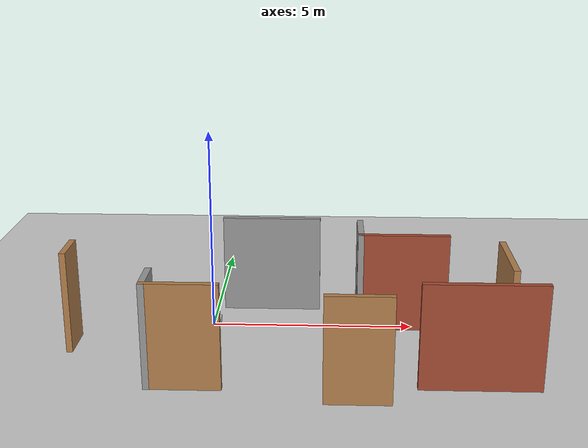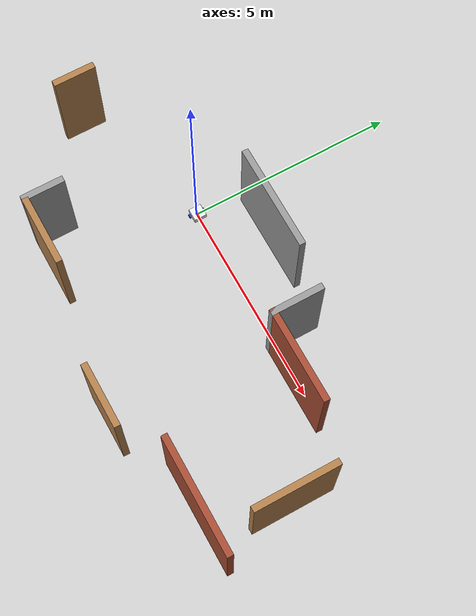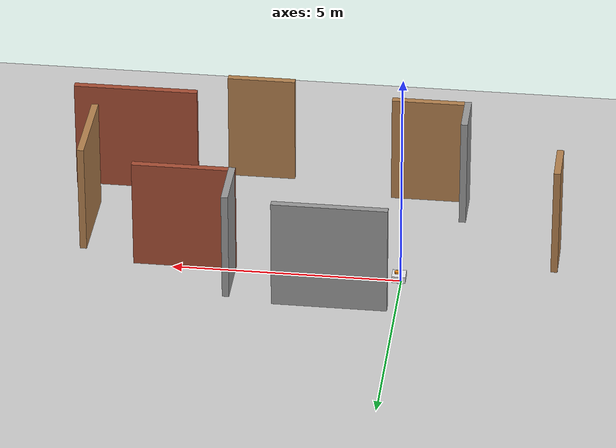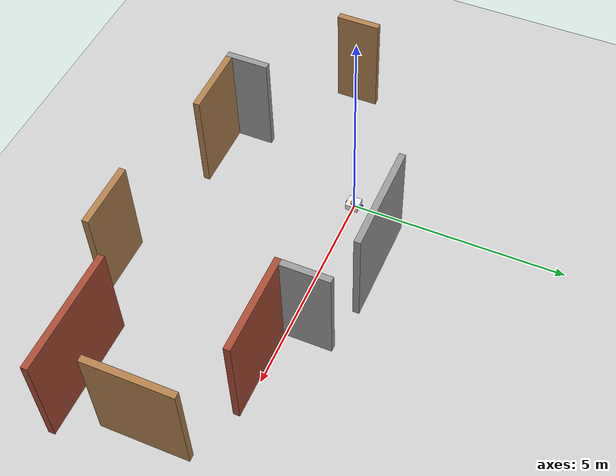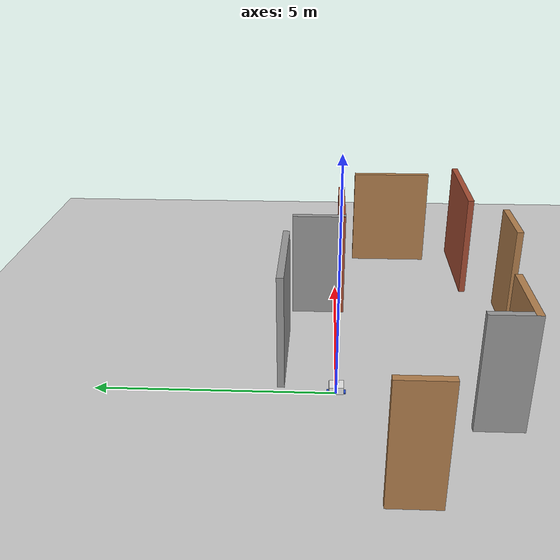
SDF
<sdf version="1.7">
 <world name="default">
  <light name="sun" type="directional">
   <pose>0 0 10 0 -0 0</pose>
   <diffuse>0.8 0.8 0.8 1</diffuse>
   <specular>0.2 0.2 0.2 1</specular>
   <attenuation>
    <range>1000</range>
    <constant>0.9</constant>
    <linear>0.01</linear>
    <quadratic>0.001</quadratic>
   </attenuation>
   <direction>-0.5 0.1 -0.9</direction>
   <spot><inner_angle>0</inner_angle><outer_angle>0</outer_angle><falloff>0</falloff></spot>
  </light>
  <model name="ground_plane">
   <static>1</static>
   <link name="link">
    <collision name="collision">
     <geometry><plane><normal>0 0 1</normal><size>100 100</size></plane></geometry>
     <surface>
      <contact><collide_bitmask>65535</collide_bitmask></contact>
      <friction><ode><mu>100</mu><mu2>50</mu2></ode></friction>
     </surface>
    </collision>
    <visual name="visual">
     <cast_shadows>0</cast_shadows>
     <geometry><plane><normal>0 0 1</normal><size>100 100</size></plane></geometry>
     <material>
      <script><uri>file://media/materials/scripts/gazebo.material</uri><name>Gazebo/Grey</name></script>
     </material>
    </visual>
   </link>
  </model>
  <gravity>0 0 -9.8</gravity>
  <magnetic_field>6e-06 2.3e-05 -4.2e-05</magnetic_field>
  <atmosphere type="adiabatic"/>
  <physics type="ode">
   <max_step_size>0.001</max_step_size>
   <real_time_factor>1</real_time_factor>
   <real_time_update_rate>1000</real_time_update_rate>
  </physics>
  <scene><ambient>0.4 0.4 0.4 1</ambient><background>0.7 0.7 0.7 1</background><shadows>1</shadows></scene>
  <audio><device>default</device></audio>
  <spherical_coordinates>
   <surface_model>EARTH_WGS84</surface_model>
   <latitude_deg>0</latitude_deg>
   <longitude_deg>0</longitude_deg>
   <elevation>0</elevation>
   <heading_deg>0</heading_deg>
  </spherical_coordinates>
  <model name="Untitled">
   <pose>2.14924 -1.45295 0 0 -0 0</pose>
   <link name="Wall_0">
    <collision name="Wall_0_Collision">
     <geometry><box><size>1 0.15 2.5</size></box></geometry>
     <pose>0 0 1.25 0 -0 0</pose>
    </collision>
    <visual name="Wall_0_Visual">
     <pose>0 0 1.25 0 -0 0</pose>
     <geometry><box><size>1 0.15 2.5</size></box></geometry>
     <material>
      <script><uri>file://media/materials/scripts/gazebo.material</uri><name>Gazebo/Wood</name></script>
      <ambient>1 1 1 1</ambient>
     </material>
     <meta><layer>0</layer></meta>
    </visual>
    <pose>-5.41924 0.197955 0 0 -0 -1.5708</pose>
   </link>
   <link name="Wall_10">
    <collision name="Wall_10_Collision">
     <geometry><box><size>1.25 0.15 2.5</size></box></geometry>
     <pose>0 0 1.25 0 -0 0</pose>
    </collision>
    <visual name="Wall_10_Visual">
     <pose>0 0 1.25 0 -0 0</pose>
     <geometry><box><size>1.25 0.15 2.5</size></box></geometry>
     <material>
      <script><uri>file://media/materials/scripts/gazebo.material</uri><name>Gazebo/Grey</name></script>
      <ambient>1 1 1 1</ambient>
     </material>
     <meta><layer>0</layer></meta>
    </visual>
    <pose>1.54084 1.87888 0 0 -0 1.5708</pose>
   </link>
   <link name="Wall_12">
    <collision name="Wall_12_Collision">
     <geometry><box><size>2.5 0.15 2.5</size></box></geometry>
     <pose>0 0 1.25 0 -0 0</pose>
    </collision>
    <visual name="Wall_12_Visual">
     <pose>0 0 1.25 0 -0 0</pose>
     <geometry><box><size>2.5 0.15 2.5</size></box></geometry>
     <material>
      <script><uri>file://media/materials/scripts/gazebo.material</uri><name>Gazebo/Grey</name></script>
      <ambient>1 1 1 1</ambient>
     </material>
     <meta><layer>0</layer></meta>
    </visual>
    <pose>-0.721383 2.59848 0 0 -0 3.14159</pose>
   </link>
   <link name="Wall_14">
    <collision name="Wall_14_Collision">
     <geometry><box><size>1.5 0.15 2.5</size></box></geometry>
     <pose>0 0 1.25 0 -0 0</pose>
    </collision>
    <visual name="Wall_14_Visual">
     <pose>0 0 1.25 0 -0 0</pose>
     <geometry><box><size>1.5 0.15 2.5</size></box></geometry>
     <material>
      <script><uri>file://media/materials/scripts/gazebo.material</uri><name>Gazebo/Wood</name></script>
      <ambient>1 1 1 1</ambient>
     </material>
     <meta><layer>0</layer></meta>
    </visual>
    <pose>1.40222 -2.59848 0 0 -0 3.14159</pose>
   </link>
   <link name="Wall_2">
    <collision name="Wall_2_Collision">
     <geometry><box><size>2.75 0.15 2.5</size></box></geometry>
     <pose>0 0 1.25 0 -0 0</pose>
    </collision>
    <visual name="Wall_2_Visual">
     <pose>0 0 1.25 0 -0 0</pose>
     <geometry><box><size>2.75 0.15 2.5</size></box></geometry>
     <material>
      <script><uri>file://media/materials/scripts/gazebo.material</uri><name>Gazebo/Bricks</name></script>
      <ambient>1 1 1 1</ambient>
     </material>
     <meta><layer>0</layer></meta>
    </visual>
    <pose>4.11924 -1.86703 0 0 -0 3.14159</pose>
   </link>
   <link name="Wall_4">
    <collision name="Wall_4_Collision">
     <geometry><box><size>2 0.15 2.5</size></box></geometry>
     <pose>0 0 1.25 0 -0 0</pose>
    </collision>
    <visual name="Wall_4_Visual">
     <pose>0 0 1.25 0 -0 0</pose>
     <geometry><box><size>2 0.15 2.5</size></box></geometry>
     <material>
      <script><uri>file://media/materials/scripts/gazebo.material</uri><name>Gazebo/Wood</name></script>
      <ambient>1 1 1 1</ambient>
     </material>
     <meta><layer>0</layer></meta>
    </visual>
    <pose>4.90215 -0.059921 0 0 -0 1.5708</pose>
   </link>
   <link name="Wall_6">
    <collision name="Wall_6_Collision">
     <geometry><box><size>1.75 0.15 2.5</size></box></geometry>
     <pose>0 0 1.25 0 -0 0</pose>
    </collision>
    <visual name="Wall_6_Visual">
     <pose>0 0 1.25 0 -0 0</pose>
     <geometry><box><size>1.75 0.15 2.5</size></box></geometry>
     <material>
      <script><uri>file://media/materials/scripts/gazebo.material</uri><name>Gazebo/Wood</name></script>
      <ambient>1 1 1 1</ambient>
     </material>
     <meta><layer>0</layer></meta>
    </visual>
    <pose>-2.45282 -2.04953 0 0 -0 3.14159</pose>
   </link>
   <link name="Wall_7">
    <collision name="Wall_7_Collision">
     <geometry><box><size>1 0.15 2.5</size></box></geometry>
     <pose>0 0 1.25 0 -0 0</pose>
    </collision>
    <visual name="Wall_7_Visual">
     <pose>0 0 1.25 0 -0 0</pose>
     <geometry><box><size>1 0.15 2.5</size></box></geometry>
     <material>
      <script><uri>file://media/materials/scripts/gazebo.material</uri><name>Gazebo/Grey</name></script>
      <ambient>1 1 1 1</ambient>
     </material>
     <meta><layer>0</layer></meta>
    </visual>
    <pose>-3.25283 -1.62453 0 0 -0 1.5708</pose>
   </link>
   <link name="Wall_9">
    <collision name="Wall_9_Collision">
     <geometry><box><size>2.25 0.15 2.5</size></box></geometry>
     <pose>0 0 1.25 0 -0 0</pose>
    </collision>
    <visual name="Wall_9_Visual">
     <pose>0 0 1.25 0 -0 0</pose>
     <geometry><box><size>2.25 0.15 2.5</size></box></geometry>
     <material>
      <script><uri>file://media/materials/scripts/gazebo.material</uri><name>Gazebo/Bricks</name></script>
      <ambient>1 1 1 1</ambient>
     </material>
     <meta><layer>0</layer></meta>
    </visual>
    <pose>2.59084 1.32888 0 0 -0 3.14159</pose>
   </link>
   <static>1</static>
  </model>
  <model name="my_bot">
   <link name="base_link">
    <inertial>
     <pose>0.07 0 0.078571 0 -0 0</pose>
     <mass>0.7</mass>
     <inertia>
      <ixx>0.0064169</ixx>
      <ixy>0</ixy>
      <ixz>0.000225</ixz>
      <iyy>0.0071969</iyy>
      <iyz>0</iyz>
      <izz>0.00840083</izz>
     </inertia>
    </inertial>
    <collision name="base_link_fixed_joint_lump__castor_wheel_collision">
     <pose>0.14 0 0 0 -0 0</pose>
     <geometry><sphere><radius>0.05</radius></sphere></geometry>
     <surface><friction><ode><mu>0.001</mu><mu2>0.001</mu2></ode></friction></surface>
    </collision>
    <collision name="base_link_fixed_joint_lump__robot_chassis_collision_1">
     <pose>0.05 0 0.075 0 -0 0</pose>
     <geometry><box><size>0.3 0.3 0.15</size></box></geometry>
    </collision>
    <collision name="base_link_fixed_joint_lump__lidar_sensor_collision_2">
     <pose>0.1 0 0.175 0 -0 0</pose>
     <geometry><cylinder><length>0.04</length><radius>0.05</radius></cylinder></geometry>
    </collision>
    <visual name="base_link_fixed_joint_lump__castor_wheel_visual">
     <pose>0.14 0 0 0 -0 0</pose>
     <geometry><sphere><radius>0.05</radius></sphere></geometry>
     <material>
      <script><name>Gazebo/Black</name><uri>file://media/materials/scripts/gazebo.material</uri></script>
     </material>
    </visual>
    <visual name="base_link_fixed_joint_lump__robot_chassis_visual_1">
     <pose>0.05 0 0.075 0 -0 0</pose>
     <geometry><box><size>0.3 0.3 0.15</size></box></geometry>
     <material>
      <script><name>Gazebo/White</name><uri>file://media/materials/scripts/gazebo.material</uri></script>
     </material>
    </visual>
    <visual name="base_link_fixed_joint_lump__lidar_sensor_visual_2">
     <pose>0.1 0 0.175 0 -0 0</pose>
     <geometry><cylinder><length>0.04</length><radius>0.05</radius></cylinder></geometry>
     <material>
      <script><name>Gazebo/Orange</name><uri>file://media/materials/scripts/gazebo.material</uri></script>
     </material>
    </visual>
    <sensor name="laser" type="ray">
     <visualize>1</visualize>
     <update_rate>20</update_rate>
     <ray>
      <scan>
       <horizontal>
        <samples>360</samples>
        <min_angle>-3.14</min_angle>
        <max_angle>3.14</max_angle>
        <resolution>1</resolution>
       </horizontal>
       <vertical><samples>1</samples><min_angle>0</min_angle><max_angle>0</max_angle></vertical>
      </scan>
      <range><min>0.3</min><max>12</max></range>
     </ray>
     <plugin name="laser_controller" filename="libgazebo_ros_ray_sensor.so">
      <ros><argument>~/out:=scan</argument></ros>
      <output_type>sensor_msgs/LaserScan</output_type>
      <frame_name>laser_frame</frame_name>
     </plugin>
     <pose>0.1 0 0.175 0 -0 0</pose>
    </sensor>
   </link>
   <joint name="left_wheel_joint" type="revolute">
    <pose relative_to="base_link">0 0.175 0 -1.5708 0 0</pose>
    <parent>base_link</parent>
    <child>left_wheel</child>
    <axis>
     <xyz>0 0 1</xyz>
     <limit><lower>-1e+16</lower><upper>1e+16</upper></limit>
     <dynamics><spring_reference>0</spring_reference><spring_stiffness>0</spring_stiffness></dynamics>
    </axis>
   </joint>
   <link name="left_wheel">
    <pose relative_to="left_wheel_joint">0 0 0 0 -0 0</pose>
    <inertial>
     <mass>0.1</mass>
     <inertia>
      <ixx>7.58333e-05</ixx>
      <ixy>0</ixy>
      <ixz>0</ixz>
      <iyy>7.58333e-05</iyy>
      <iyz>0</iyz>
      <izz>2.08333e-05</izz>
     </inertia>
    </inertial>
    <collision name="left_wheel_collision">
     <geometry><cylinder><length>0.04</length><radius>0.05</radius></cylinder></geometry>
    </collision>
    <visual name="left_wheel_visual">
     <geometry><cylinder><length>0.04</length><radius>0.05</radius></cylinder></geometry>
     <material>
      <script><name>Gazebo/Blue</name><uri>file://media/materials/scripts/gazebo.material</uri></script>
     </material>
    </visual>
   </link>
   <joint name="right_wheel_joint" type="revolute">
    <pose relative_to="base_link">0 -0.175 0 1.5708 -0 0</pose>
    <parent>base_link</parent>
    <child>right_wheel</child>
    <axis>
     <xyz>0 0 -1</xyz>
     <limit><lower>-1e+16</lower><upper>1e+16</upper></limit>
     <dynamics><spring_reference>0</spring_reference><spring_stiffness>0</spring_stiffness></dynamics>
    </axis>
   </joint>
   <link name="right_wheel">
    <pose relative_to="right_wheel_joint">0 0 0 0 -0 0</pose>
    <inertial>
     <mass>0.1</mass>
     <inertia>
      <ixx>7.58333e-05</ixx>
      <ixy>0</ixy>
      <ixz>0</ixz>
      <iyy>7.58333e-05</iyy>
      <iyz>0</iyz>
      <izz>2.08333e-05</izz>
     </inertia>
    </inertial>
    <collision name="right_wheel_collision">
     <geometry><cylinder><length>0.04</length><radius>0.05</radius></cylinder></geometry>
    </collision>
    <visual name="right_wheel_visual">
     <geometry><cylinder><length>0.04</length><radius>0.05</radius></cylinder></geometry>
     <material>
      <script><name>Gazebo/Blue</name><uri>file://media/materials/scripts/gazebo.material</uri></script>
     </material>
    </visual>
   </link>
   <static>0</static>
   <plugin name="diff_drive" filename="libgazebo_ros_diff_drive.so">
    <left_joint>left_wheel_joint</left_joint>
    <right_joint>right_wheel_joint</right_joint>
    <wheel_separation>0.35</wheel_separation>
    <wheel_diameter>0.1</wheel_diameter>
    <max_wheel_torque>250</max_wheel_torque>
    <max_wheel_acceleration>10.0</max_wheel_acceleration>
    <odometry_frame>odom</odometry_frame>
    <robot_base_frame>base_link</robot_base_frame>
    <publish_odom>1</publish_odom>
    <publish_odom_tf>1</publish_odom_tf>
    <publish_wheel_tf>1</publish_wheel_tf>
   </plugin>
   <pose>-0.01127 0.000223 0.050001 -0 5e-06 0.0052</pose>
  </model>
 </world>
</sdf>
